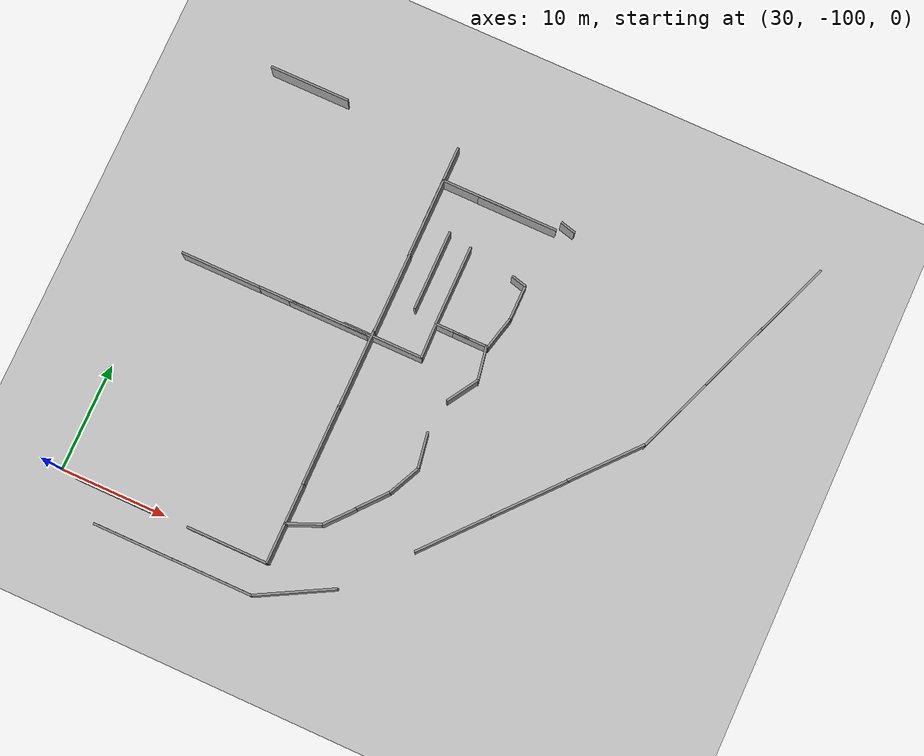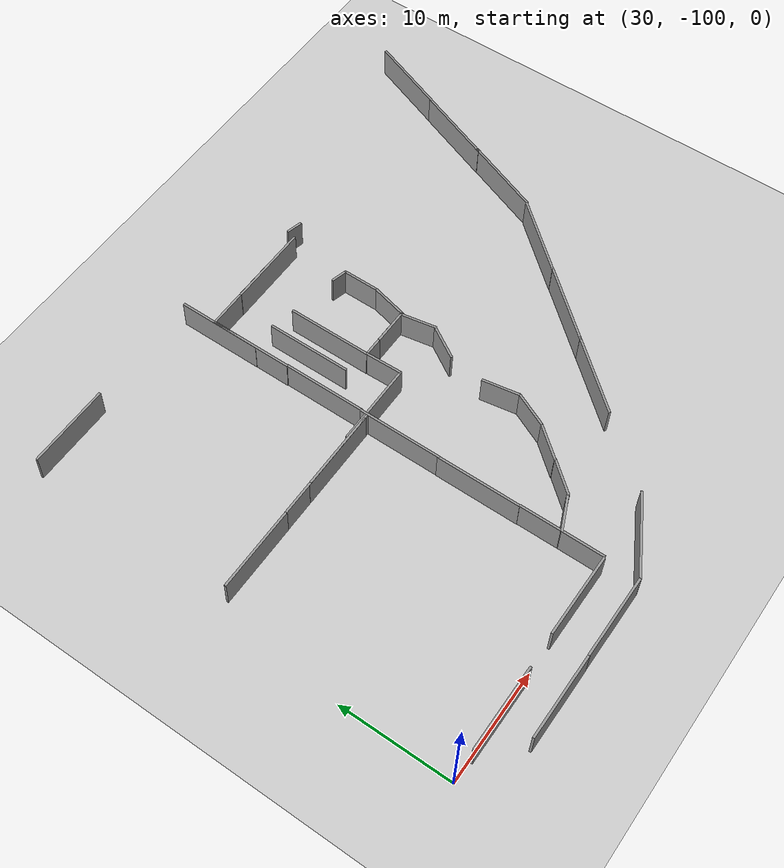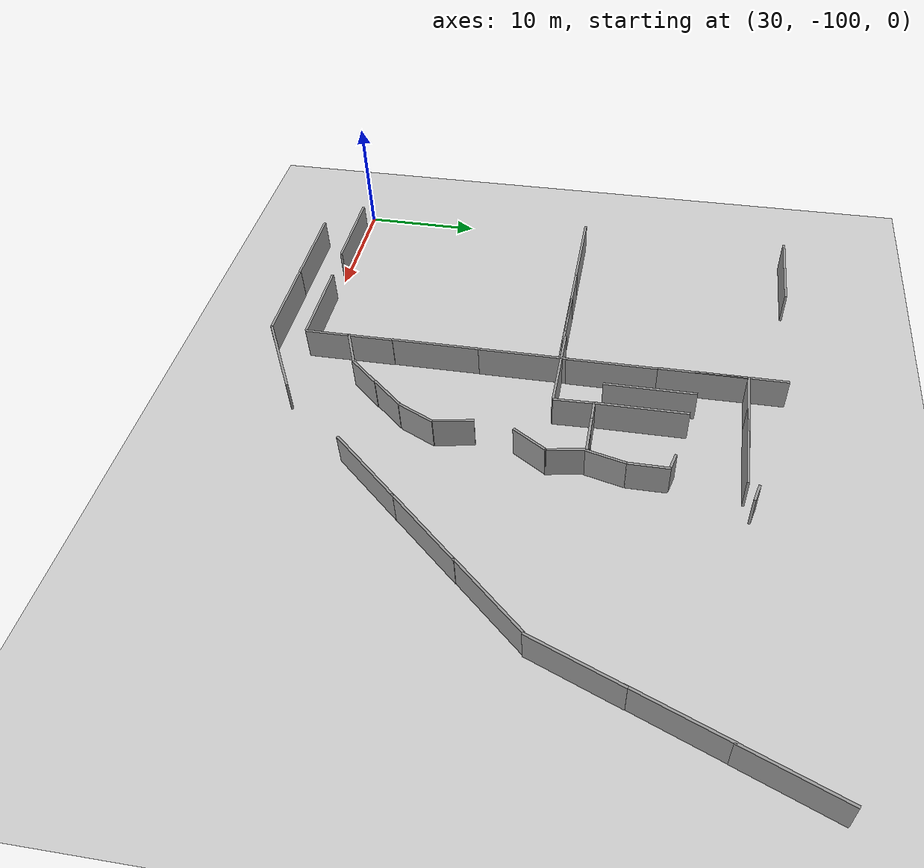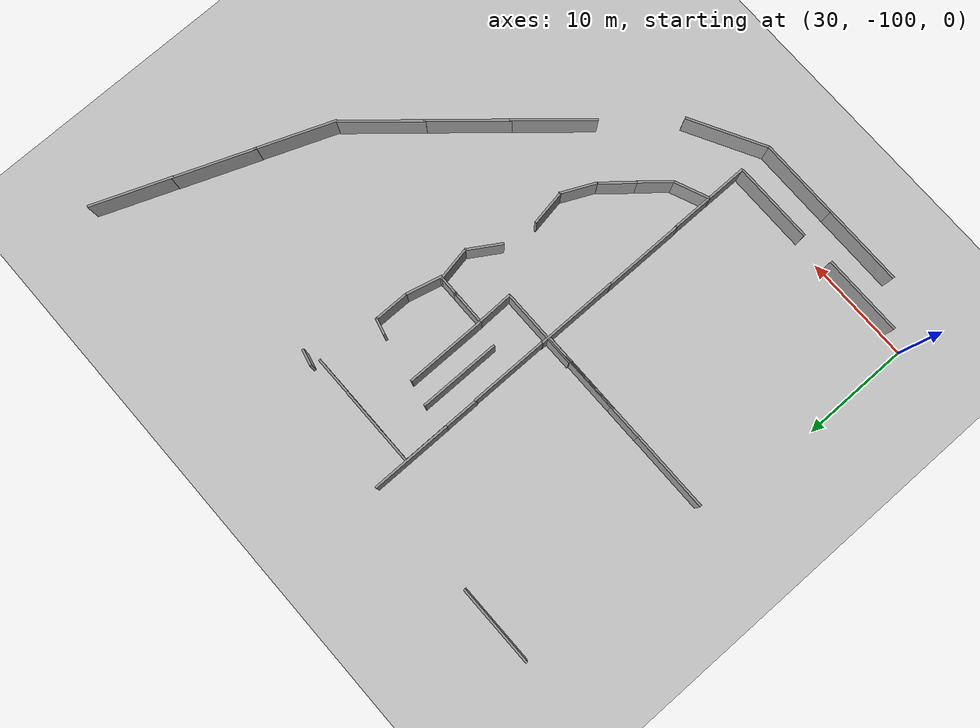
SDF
<sdf version="1.7">
 <world name="default">
  <model name="ground_plane">
   <static>1</static>
   <link name="link">
    <collision name="collision">
     <geometry><plane><normal>0 0 1</normal><size>100 100</size></plane></geometry>
     <surface>
      <contact><collide_bitmask>65535</collide_bitmask></contact>
      <friction><ode><mu>100</mu><mu2>50</mu2></ode></friction>
     </surface>
    </collision>
    <visual name="visual">
     <cast_shadows>0</cast_shadows>
     <geometry><plane><normal>0 0 1</normal><size>100 100</size></plane></geometry>
     <material>
      <script><uri>file://media/materials/scripts/gazebo.material</uri><name>Gazebo/Grey</name></script>
     </material>
    </visual>
   </link>
  </model>
  <model name="grey_wall_1_clone_clone_1_clone_clone_0_clone_clone_1">
   <static>1</static>
   <link name="link">
    <pose>0 0 1.4 0 -0 0</pose>
    <collision name="collision"><geometry><box><size>7.5 0.2 2.8</size></box></geometry></collision>
    <visual name="visual">
     <cast_shadows>0</cast_shadows>
     <geometry><box><size>7.5 0.2 2.8</size></box></geometry>
     <material>
      <script>
       <uri>model://grey_wall/materials/scripts</uri>
       <uri>model://grey_wall/materials/textures</uri>
       <name>vrc/grey_wall</name>
      </script>
     </material>
    </visual>
   </link>
   <pose>35.5148 -78.5396 0 0 -0 0</pose>
  </model>
  <model name="grey_wall_1_clone_clone_1_clone_clone_0_clone_clone_2">
   <static>1</static>
   <link name="link">
    <pose>0 0 1.4 0 -0 0</pose>
    <collision name="collision"><geometry><box><size>7.5 0.2 2.8</size></box></geometry></collision>
    <visual name="visual">
     <cast_shadows>0</cast_shadows>
     <geometry><box><size>7.5 0.2 2.8</size></box></geometry>
     <material>
      <script>
       <uri>model://grey_wall/materials/scripts</uri>
       <uri>model://grey_wall/materials/textures</uri>
       <name>vrc/grey_wall</name>
      </script>
     </material>
    </visual>
   </link>
   <pose>42.9136 -78.5242 0 0 -0 0</pose>
  </model>
  <model name="grey_wall_1_clone_clone_1_clone_clone_0_clone_clone_3">
   <static>1</static>
   <link name="link">
    <pose>0 0 1.4 0 -0 0</pose>
    <collision name="collision"><geometry><box><size>7.5 0.2 2.8</size></box></geometry></collision>
    <visual name="visual">
     <cast_shadows>0</cast_shadows>
     <geometry><box><size>7.5 0.2 2.8</size></box></geometry>
     <material>
      <script>
       <uri>model://grey_wall/materials/scripts</uri>
       <uri>model://grey_wall/materials/textures</uri>
       <name>vrc/grey_wall</name>
      </script>
     </material>
    </visual>
   </link>
   <pose>45.8586 -78.5297 0 0 -0 0</pose>
  </model>
  <model name="grey_wall_1_clone_clone_1_clone_clone_0_clone_clone_clone_1">
   <static>1</static>
   <link name="link">
    <pose>0 0 1.4 0 -0 0</pose>
    <collision name="collision"><geometry><box><size>7.5 0.2 2.8</size></box></geometry></collision>
    <visual name="visual">
     <cast_shadows>0</cast_shadows>
     <geometry><box><size>7.5 0.2 2.8</size></box></geometry>
     <material>
      <script>
       <uri>model://grey_wall/materials/scripts</uri>
       <uri>model://grey_wall/materials/textures</uri>
       <name>vrc/grey_wall</name>
      </script>
     </material>
    </visual>
   </link>
   <pose>35.6685 -100.202 0 0 -0 0</pose>
  </model>
  <model name="grey_wall_1_clone_clone_1_clone_clone_0_clone_clone_clone_2">
   <static>1</static>
   <link name="link">
    <pose>0 0 1.4 0 -0 0</pose>
    <collision name="collision"><geometry><box><size>7.5 0.2 2.8</size></box></geometry></collision>
    <visual name="visual">
     <cast_shadows>0</cast_shadows>
     <geometry><box><size>7.5 0.2 2.8</size></box></geometry>
     <material>
      <script>
       <uri>model://grey_wall/materials/scripts</uri>
       <uri>model://grey_wall/materials/textures</uri>
       <name>vrc/grey_wall</name>
      </script>
     </material>
    </visual>
   </link>
   <pose>46.1969 -100.082 0 0 -0 0</pose>
  </model>
  <model name="grey_wall_0_clone_0_clone_clone_clone_0_clone_clone_0_clone">
   <static>1</static>
   <link name="link">
    <pose>0 0 1.4 0 -0 0</pose>
    <collision name="collision"><geometry><box><size>7.5 0.2 2.8</size></box></geometry></collision>
    <visual name="visual">
     <cast_shadows>0</cast_shadows>
     <geometry><box><size>7.5 0.2 2.8</size></box></geometry>
     <material>
      <script>
       <uri>model://grey_wall/materials/scripts</uri>
       <uri>model://grey_wall/materials/textures</uri>
       <name>vrc/grey_wall</name>
      </script>
     </material>
    </visual>
   </link>
   <pose>50.0048 -96.3558 0 0 -0 1.5708</pose>
  </model>
  <model name="grey_wall_0_clone_0_clone_clone_clone_0_clone_clone_0_clone_0">
   <static>1</static>
   <link name="link">
    <pose>0 0 1.4 0 -0 0</pose>
    <collision name="collision"><geometry><box><size>7.5 0.2 2.8</size></box></geometry></collision>
    <visual name="visual">
     <cast_shadows>0</cast_shadows>
     <geometry><box><size>7.5 0.2 2.8</size></box></geometry>
     <material>
      <script>
       <uri>model://grey_wall/materials/scripts</uri>
       <uri>model://grey_wall/materials/textures</uri>
       <name>vrc/grey_wall</name>
      </script>
     </material>
    </visual>
   </link>
   <pose>49.9695 -88.9142 0 0 -0 1.5708</pose>
  </model>
  <model name="grey_wall_0_clone_0_clone_clone_clone_0_clone_clone_0_clone_1">
   <static>1</static>
   <link name="link">
    <pose>0 0 1.4 0 -0 0</pose>
    <collision name="collision"><geometry><box><size>7.5 0.2 2.8</size></box></geometry></collision>
    <visual name="visual">
     <cast_shadows>0</cast_shadows>
     <geometry><box><size>7.5 0.2 2.8</size></box></geometry>
     <material>
      <script>
       <uri>model://grey_wall/materials/scripts</uri>
       <uri>model://grey_wall/materials/textures</uri>
       <name>vrc/grey_wall</name>
      </script>
     </material>
    </visual>
   </link>
   <pose>49.993 -81.5608 0 0 -0 1.5708</pose>
  </model>
  <model name="grey_wall_0_clone_0_clone_clone_clone_0_clone_clone_0_clone_2">
   <static>1</static>
   <link name="link">
    <pose>0 0 1.4 0 -0 0</pose>
    <collision name="collision"><geometry><box><size>7.5 0.2 2.8</size></box></geometry></collision>
    <visual name="visual">
     <cast_shadows>0</cast_shadows>
     <geometry><box><size>7.5 0.2 2.8</size></box></geometry>
     <material>
      <script>
       <uri>model://grey_wall/materials/scripts</uri>
       <uri>model://grey_wall/materials/textures</uri>
       <name>vrc/grey_wall</name>
      </script>
     </material>
    </visual>
   </link>
   <pose>50.0365 -74.2557 0 0 -0 1.5708</pose>
  </model>
  <model name="grey_wall_0_clone_0_clone_clone_clone_0_clone_clone_0_clone_3">
   <static>1</static>
   <link name="link">
    <pose>0 0 1.4 0 -0 0</pose>
    <collision name="collision"><geometry><box><size>7.5 0.2 2.8</size></box></geometry></collision>
    <visual name="visual">
     <cast_shadows>0</cast_shadows>
     <geometry><box><size>7.5 0.2 2.8</size></box></geometry>
     <material>
      <script>
       <uri>model://grey_wall/materials/scripts</uri>
       <uri>model://grey_wall/materials/textures</uri>
       <name>vrc/grey_wall</name>
      </script>
     </material>
    </visual>
   </link>
   <pose>49.9876 -66.8962 0 0 -0 1.5708</pose>
  </model>
  <model name="grey_wall_0_clone_0_clone_clone_clone_0_clone_clone_0_clone_4">
   <static>1</static>
   <link name="link">
    <pose>0 0 1.4 0 -0 0</pose>
    <collision name="collision"><geometry><box><size>7.5 0.2 2.8</size></box></geometry></collision>
    <visual name="visual">
     <cast_shadows>0</cast_shadows>
     <geometry><box><size>7.5 0.2 2.8</size></box></geometry>
     <material>
      <script>
       <uri>model://grey_wall/materials/scripts</uri>
       <uri>model://grey_wall/materials/textures</uri>
       <name>vrc/grey_wall</name>
      </script>
     </material>
    </visual>
   </link>
   <pose>49.9704 -63.7191 0 0 -0 1.5708</pose>
  </model>
  <model name="grey_wall_1_clone_clone_1_clone_clone_0_clone_clone_5">
   <static>1</static>
   <link name="link">
    <pose>0 0 1.4 0 -0 0</pose>
    <collision name="collision"><geometry><box><size>7.5 0.2 2.8</size></box></geometry></collision>
    <visual name="visual">
     <cast_shadows>0</cast_shadows>
     <geometry><box><size>7.5 0.2 2.8</size></box></geometry>
     <material>
      <script>
       <uri>model://grey_wall/materials/scripts</uri>
       <uri>model://grey_wall/materials/textures</uri>
       <name>vrc/grey_wall</name>
      </script>
     </material>
    </visual>
   </link>
   <pose>35.5341 -60.0532 0 0 -0 0</pose>
  </model>
  <model name="grey_wall_1_clone_clone_1_clone_clone_0_clone_clone_clone_0_clone_2">
   <static>1</static>
   <link name="link">
    <pose>0 0 1.4 0 -0 0</pose>
    <collision name="collision"><geometry><box><size>7.5 0.2 2.8</size></box></geometry></collision>
    <visual name="visual">
     <cast_shadows>0</cast_shadows>
     <geometry><box><size>7.5 0.2 2.8</size></box></geometry>
     <material>
      <script>
       <uri>model://grey_wall/materials/scripts</uri>
       <uri>model://grey_wall/materials/textures</uri>
       <name>vrc/grey_wall</name>
      </script>
     </material>
    </visual>
   </link>
   <pose>38.7676 -103.126 0 0 -0 0</pose>
  </model>
  <model name="grey_wall_1_clone_clone_1_clone_clone_0_clone_clone_clone_0_clone_3">
   <static>1</static>
   <link name="link">
    <pose>0 0 1.4 0 -0 0</pose>
    <collision name="collision"><geometry><box><size>7.5 0.2 2.8</size></box></geometry></collision>
    <visual name="visual">
     <cast_shadows>0</cast_shadows>
     <geometry><box><size>7.5 0.2 2.8</size></box></geometry>
     <material>
      <script>
       <uri>model://grey_wall/materials/scripts</uri>
       <uri>model://grey_wall/materials/textures</uri>
       <name>vrc/grey_wall</name>
      </script>
     </material>
    </visual>
   </link>
   <pose>46.2305 -103.115 0 0 -0 0</pose>
  </model>
  <model name="grey_wall_1_clone_clone_1_clone_clone_0_clone_clone_3_clone">
   <static>1</static>
   <link name="link">
    <pose>0 0 1.4 0 -0 0</pose>
    <collision name="collision"><geometry><box><size>7.5 0.2 2.8</size></box></geometry></collision>
    <visual name="visual">
     <cast_shadows>0</cast_shadows>
     <geometry><box><size>7.5 0.2 2.8</size></box></geometry>
     <material>
      <script>
       <uri>model://grey_wall/materials/scripts</uri>
       <uri>model://grey_wall/materials/textures</uri>
       <name>vrc/grey_wall</name>
      </script>
     </material>
    </visual>
   </link>
   <pose>46.1597 -78.522 0 0 -0 0</pose>
  </model>
  <model name="half_grey_wall_clone_clone_0_clone_clone_clone_clone_0_clone_1_clone_0">
   <link name="link">
    <pose>0 0 1.4 0 -0 0</pose>
    <inertial>
     <mass>1</mass>
     <inertia><ixx>1</ixx><ixy>0</ixy><ixz>0</ixz><iyy>1</iyy><iyz>0</iyz><izz>1</izz></inertia>
    </inertial>
    <visual name="visual">
     <cast_shadows>0</cast_shadows>
     <geometry><box><size>3.3 0.2 2.8</size></box></geometry>
     <material>
      <script>
       <uri>model://grey_wall/materials/scripts</uri>
       <uri>model://grey_wall/materials/textures</uri>
       <name>vrc/grey_wall</name>
      </script>
      <shader type="pixel"><normal_map>__default__</normal_map></shader>
      <ambient>1 1 1 1</ambient>
      <diffuse>1 1 1 1</diffuse>
      <specular>0 0 0 1</specular>
      <emissive>0 0 0 1</emissive>
     </material>
    </visual>
    <collision name="collision">
     <geometry><box><size>3.3 0.2 2.8</size></box></geometry>
     <surface>
      <friction>
       <ode><mu>1</mu><mu2>1</mu2><fdir1>0 0 0</fdir1><slip1>0</slip1><slip2>0</slip2></ode>
       <torsional>
        <coefficient>1</coefficient>
        <patch_radius>0</patch_radius>
        <surface_radius>0</surface_radius>
        <use_patch_radius>1</use_patch_radius>
        <ode><slip>0</slip></ode>
       </torsional>
      </friction>
      <bounce><restitution_coefficient>0</restitution_coefficient><threshold>1e+06</threshold></bounce>
      <contact>
       <collide_without_contact>0</collide_without_contact>
       <collide_without_contact_bitmask>1</collide_without_contact_bitmask>
       <collide_bitmask>1</collide_bitmask>
       <ode>
        <soft_cfm>0</soft_cfm>
        <soft_erp>0.2</soft_erp>
        <kp>1e+13</kp>
        <kd>1</kd>
        <max_vel>0.01</max_vel>
        <min_depth>0</min_depth>
       </ode>
       <bullet>
        <split_impulse>1</split_impulse>
        <split_impulse_penetration_threshold>-0.01</split_impulse_penetration_threshold>
        <soft_cfm>0</soft_cfm>
        <soft_erp>0.2</soft_erp>
        <kp>1e+13</kp>
        <kd>1</kd>
       </bullet>
      </contact>
     </surface>
    </collision>
   </link>
   <static>1</static>
   <pose>51.4428 -95.7398 0 0 0 -2.74169</pose>
  </model>
  <model name="half_grey_wall_clone_clone_0_clone_clone_clone_clone_0_clone_1_clone_1">
   <link name="link">
    <pose>0 0 1.4 0 -0 0</pose>
    <inertial>
     <mass>1</mass>
     <inertia><ixx>1</ixx><ixy>0</ixy><ixz>0</ixz><iyy>1</iyy><iyz>0</iyz><izz>1</izz></inertia>
    </inertial>
    <visual name="visual">
     <cast_shadows>0</cast_shadows>
     <geometry><box><size>3.3 0.2 2.8</size></box></geometry>
     <material>
      <script>
       <uri>model://grey_wall/materials/scripts</uri>
       <uri>model://grey_wall/materials/textures</uri>
       <name>vrc/grey_wall</name>
      </script>
      <shader type="pixel"><normal_map>__default__</normal_map></shader>
      <ambient>1 1 1 1</ambient>
      <diffuse>1 1 1 1</diffuse>
      <specular>0 0 0 1</specular>
      <emissive>0 0 0 1</emissive>
     </material>
    </visual>
    <collision name="collision">
     <geometry><box><size>3.3 0.2 2.8</size></box></geometry>
     <surface>
      <friction>
       <ode><mu>1</mu><mu2>1</mu2><fdir1>0 0 0</fdir1><slip1>0</slip1><slip2>0</slip2></ode>
       <torsional>
        <coefficient>1</coefficient>
        <patch_radius>0</patch_radius>
        <surface_radius>0</surface_radius>
        <use_patch_radius>1</use_patch_radius>
        <ode><slip>0</slip></ode>
       </torsional>
      </friction>
      <bounce><restitution_coefficient>0</restitution_coefficient><threshold>1e+06</threshold></bounce>
      <contact>
       <collide_without_contact>0</collide_without_contact>
       <collide_without_contact_bitmask>1</collide_without_contact_bitmask>
       <collide_bitmask>1</collide_bitmask>
       <ode>
        <soft_cfm>0</soft_cfm>
        <soft_erp>0.2</soft_erp>
        <kp>1e+13</kp>
        <kd>1</kd>
        <max_vel>0.01</max_vel>
        <min_depth>0</min_depth>
       </ode>
       <bullet>
        <split_impulse>1</split_impulse>
        <split_impulse_penetration_threshold>-0.01</split_impulse_penetration_threshold>
        <soft_cfm>0</soft_cfm>
        <soft_erp>0.2</soft_erp>
        <kp>1e+13</kp>
        <kd>1</kd>
       </bullet>
      </contact>
     </surface>
    </collision>
   </link>
   <static>1</static>
   <pose>53.9819 -93.9284 -0 0 0 -2.2781</pose>
  </model>
  <model name="grey_wall_1_clone_clone_1_clone_clone_0_clone_clone_3_clone_0">
   <static>1</static>
   <link name="link">
    <pose>0 0 1.4 0 -0 0</pose>
    <collision name="collision"><geometry><box><size>7.5 0.2 2.8</size></box></geometry></collision>
    <visual name="visual">
     <cast_shadows>0</cast_shadows>
     <geometry><box><size>7.5 0.2 2.8</size></box></geometry>
     <material>
      <script>
       <uri>model://grey_wall/materials/scripts</uri>
       <uri>model://grey_wall/materials/textures</uri>
       <name>vrc/grey_wall</name>
      </script>
     </material>
    </visual>
   </link>
   <pose>51.0695 -78.3972 0 0 -0 0</pose>
  </model>
  <model name="half_grey_wall_clone_clone_0_clone_clone_clone_clone_0_clone_0_clone_clone_1_clone_clone_clone_0_clone_0">
   <link name="link">
    <pose>0 0 1.4 0 -0 0</pose>
    <inertial>
     <mass>1</mass>
     <inertia><ixx>1</ixx><ixy>0</ixy><ixz>0</ixz><iyy>1</iyy><iyz>0</iyz><izz>1</izz></inertia>
    </inertial>
    <visual name="visual">
     <cast_shadows>0</cast_shadows>
     <geometry><box><size>3.3 0.2 2.8</size></box></geometry>
     <material>
      <script>
       <uri>model://grey_wall/materials/scripts</uri>
       <uri>model://grey_wall/materials/textures</uri>
       <name>vrc/grey_wall</name>
      </script>
      <shader type="pixel"><normal_map>__default__</normal_map></shader>
      <ambient>1 1 1 1</ambient>
      <diffuse>1 1 1 1</diffuse>
      <specular>0 0 0 1</specular>
      <emissive>0 0 0 1</emissive>
     </material>
    </visual>
    <collision name="collision">
     <geometry><box><size>3.3 0.2 2.8</size></box></geometry>
     <surface>
      <friction>
       <ode><mu>1</mu><mu2>1</mu2><fdir1>0 0 0</fdir1><slip1>0</slip1><slip2>0</slip2></ode>
       <torsional>
        <coefficient>1</coefficient>
        <patch_radius>0</patch_radius>
        <surface_radius>0</surface_radius>
        <use_patch_radius>1</use_patch_radius>
        <ode><slip>0</slip></ode>
       </torsional>
      </friction>
      <bounce><restitution_coefficient>0</restitution_coefficient><threshold>1e+06</threshold></bounce>
      <contact>
       <collide_without_contact>0</collide_without_contact>
       <collide_without_contact_bitmask>1</collide_without_contact_bitmask>
       <collide_bitmask>1</collide_bitmask>
       <ode>
        <soft_cfm>0</soft_cfm>
        <soft_erp>0.2</soft_erp>
        <kp>1e+13</kp>
        <kd>1</kd>
        <max_vel>0.01</max_vel>
        <min_depth>0</min_depth>
       </ode>
       <bullet>
        <split_impulse>1</split_impulse>
        <split_impulse_penetration_threshold>-0.01</split_impulse_penetration_threshold>
        <soft_cfm>0</soft_cfm>
        <soft_erp>0.2</soft_erp>
        <kp>1e+13</kp>
        <kd>1</kd>
       </bullet>
      </contact>
     </surface>
    </collision>
   </link>
   <static>1</static>
   <pose>54.7026 -76.784 -0 0 0 -1.5482</pose>
  </model>
  <model name="half_grey_wall_clone_clone_0_clone_clone_clone_clone_2_clone_clone_1_clone_clone_1">
   <link name="link">
    <pose>0 0 1.4 0 -0 0</pose>
    <inertial>
     <mass>1</mass>
     <inertia><ixx>1</ixx><ixy>0</ixy><ixz>0</ixz><iyy>1</iyy><iyz>0</iyz><izz>1</izz></inertia>
    </inertial>
    <visual name="visual">
     <cast_shadows>0</cast_shadows>
     <geometry><box><size>3.3 0.2 2.8</size></box></geometry>
     <material>
      <script>
       <uri>model://grey_wall/materials/scripts</uri>
       <uri>model://grey_wall/materials/textures</uri>
       <name>vrc/grey_wall</name>
      </script>
      <shader type="pixel"><normal_map>__default__</normal_map></shader>
      <ambient>1 1 1 1</ambient>
      <diffuse>1 1 1 1</diffuse>
      <specular>0 0 0 1</specular>
      <emissive>0 0 0 1</emissive>
     </material>
    </visual>
    <collision name="collision">
     <geometry><box><size>3.3 0.2 2.8</size></box></geometry>
     <surface>
      <friction>
       <ode><mu>1</mu><mu2>1</mu2><fdir1>0 0 0</fdir1><slip1>0</slip1><slip2>0</slip2></ode>
       <torsional>
        <coefficient>1</coefficient>
        <patch_radius>0</patch_radius>
        <surface_radius>0</surface_radius>
        <use_patch_radius>1</use_patch_radius>
        <ode><slip>0</slip></ode>
       </torsional>
      </friction>
      <bounce><restitution_coefficient>0</restitution_coefficient><threshold>1e+06</threshold></bounce>
      <contact>
       <collide_without_contact>0</collide_without_contact>
       <collide_without_contact_bitmask>1</collide_without_contact_bitmask>
       <collide_bitmask>1</collide_bitmask>
       <ode>
        <soft_cfm>0</soft_cfm>
        <soft_erp>0.2</soft_erp>
        <kp>1e+13</kp>
        <kd>1</kd>
        <max_vel>0.01</max_vel>
        <min_depth>0</min_depth>
       </ode>
       <bullet>
        <split_impulse>1</split_impulse>
        <split_impulse_penetration_threshold>-0.01</split_impulse_penetration_threshold>
        <soft_cfm>0</soft_cfm>
        <soft_erp>0.2</soft_erp>
        <kp>1e+13</kp>
        <kd>1</kd>
       </bullet>
      </contact>
     </surface>
    </collision>
   </link>
   <static>1</static>
   <pose>56.2341 -75.1641 0 0 -0 3.13943</pose>
  </model>
  <model name="half_grey_wall_clone_clone_0_clone_clone_clone_clone_0_clone_1_clone_1_clone">
   <link name="link">
    <pose>0 0 1.4 0 -0 0</pose>
    <inertial>
     <mass>1</mass>
     <inertia><ixx>1</ixx><ixy>0</ixy><ixz>0</ixz><iyy>1</iyy><iyz>0</iyz><izz>1</izz></inertia>
    </inertial>
    <visual name="visual">
     <cast_shadows>0</cast_shadows>
     <geometry><box><size>3.3 0.2 2.8</size></box></geometry>
     <material>
      <script>
       <uri>model://grey_wall/materials/scripts</uri>
       <uri>model://grey_wall/materials/textures</uri>
       <name>vrc/grey_wall</name>
      </script>
      <shader type="pixel"><normal_map>__default__</normal_map></shader>
      <ambient>1 1 1 1</ambient>
      <diffuse>1 1 1 1</diffuse>
      <specular>0 0 0 1</specular>
      <emissive>0 0 0 1</emissive>
     </material>
    </visual>
    <collision name="collision">
     <geometry><box><size>3.3 0.2 2.8</size></box></geometry>
     <surface>
      <friction>
       <ode><mu>1</mu><mu2>1</mu2><fdir1>0 0 0</fdir1><slip1>0</slip1><slip2>0</slip2></ode>
       <torsional>
        <coefficient>1</coefficient>
        <patch_radius>0</patch_radius>
        <surface_radius>0</surface_radius>
        <use_patch_radius>1</use_patch_radius>
        <ode><slip>0</slip></ode>
       </torsional>
      </friction>
      <bounce><restitution_coefficient>0</restitution_coefficient><threshold>1e+06</threshold></bounce>
      <contact>
       <collide_without_contact>0</collide_without_contact>
       <collide_without_contact_bitmask>1</collide_without_contact_bitmask>
       <collide_bitmask>1</collide_bitmask>
       <ode>
        <soft_cfm>0</soft_cfm>
        <soft_erp>0.2</soft_erp>
        <kp>1e+13</kp>
        <kd>1</kd>
        <max_vel>0.01</max_vel>
        <min_depth>0</min_depth>
       </ode>
       <bullet>
        <split_impulse>1</split_impulse>
        <split_impulse_penetration_threshold>-0.01</split_impulse_penetration_threshold>
        <soft_cfm>0</soft_cfm>
        <soft_erp>0.2</soft_erp>
        <kp>1e+13</kp>
        <kd>1</kd>
       </bullet>
      </contact>
     </surface>
    </collision>
   </link>
   <static>1</static>
   <pose>56.0141 -91.4835 0 0 0 -2.27394</pose>
  </model>
  <model name="half_grey_wall_clone_clone_0_clone_clone_clone_clone_0_clone_1_clone_1_clone_0">
   <link name="link">
    <pose>0 0 1.4 0 -0 0</pose>
    <inertial>
     <mass>1</mass>
     <inertia><ixx>1</ixx><ixy>0</ixy><ixz>0</ixz><iyy>1</iyy><iyz>0</iyz><izz>1</izz></inertia>
    </inertial>
    <visual name="visual">
     <cast_shadows>0</cast_shadows>
     <geometry><box><size>3.3 0.2 2.8</size></box></geometry>
     <material>
      <script>
       <uri>model://grey_wall/materials/scripts</uri>
       <uri>model://grey_wall/materials/textures</uri>
       <name>vrc/grey_wall</name>
      </script>
      <shader type="pixel"><normal_map>__default__</normal_map></shader>
      <ambient>1 1 1 1</ambient>
      <diffuse>1 1 1 1</diffuse>
      <specular>0 0 0 1</specular>
      <emissive>0 0 0 1</emissive>
     </material>
    </visual>
    <collision name="collision">
     <geometry><box><size>3.3 0.2 2.8</size></box></geometry>
     <surface>
      <friction>
       <ode><mu>1</mu><mu2>1</mu2><fdir1>0 0 0</fdir1><slip1>0</slip1><slip2>0</slip2></ode>
       <torsional>
        <coefficient>1</coefficient>
        <patch_radius>0</patch_radius>
        <surface_radius>0</surface_radius>
        <use_patch_radius>1</use_patch_radius>
        <ode><slip>0</slip></ode>
       </torsional>
      </friction>
      <bounce><restitution_coefficient>0</restitution_coefficient><threshold>1e+06</threshold></bounce>
      <contact>
       <collide_without_contact>0</collide_without_contact>
       <collide_without_contact_bitmask>1</collide_without_contact_bitmask>
       <collide_bitmask>1</collide_bitmask>
       <ode>
        <soft_cfm>0</soft_cfm>
        <soft_erp>0.2</soft_erp>
        <kp>1e+13</kp>
        <kd>1</kd>
        <max_vel>0.01</max_vel>
        <min_depth>0</min_depth>
       </ode>
       <bullet>
        <split_impulse>1</split_impulse>
        <split_impulse_penetration_threshold>-0.01</split_impulse_penetration_threshold>
        <soft_cfm>0</soft_cfm>
        <soft_erp>0.2</soft_erp>
        <kp>1e+13</kp>
        <kd>1</kd>
       </bullet>
      </contact>
     </surface>
    </collision>
   </link>
   <static>1</static>
   <pose>57.8183 -88.7144 0 0 0 -2.01124</pose>
  </model>
  <model name="half_grey_wall_clone_clone_0_clone_clone_clone_clone_0_clone_1_clone_1_clone_1">
   <link name="link">
    <pose>0 0 1.4 0 -0 0</pose>
    <inertial>
     <mass>1</mass>
     <inertia><ixx>1</ixx><ixy>0</ixy><ixz>0</ixz><iyy>1</iyy><iyz>0</iyz><izz>1</izz></inertia>
    </inertial>
    <visual name="visual">
     <cast_shadows>0</cast_shadows>
     <geometry><box><size>3.3 0.2 2.8</size></box></geometry>
     <material>
      <script>
       <uri>model://grey_wall/materials/scripts</uri>
       <uri>model://grey_wall/materials/textures</uri>
       <name>vrc/grey_wall</name>
      </script>
      <shader type="pixel"><normal_map>__default__</normal_map></shader>
      <ambient>1 1 1 1</ambient>
      <diffuse>1 1 1 1</diffuse>
      <specular>0 0 0 1</specular>
      <emissive>0 0 0 1</emissive>
     </material>
    </visual>
    <collision name="collision">
     <geometry><box><size>3.3 0.2 2.8</size></box></geometry>
     <surface>
      <friction>
       <ode><mu>1</mu><mu2>1</mu2><fdir1>0 0 0</fdir1><slip1>0</slip1><slip2>0</slip2></ode>
       <torsional>
        <coefficient>1</coefficient>
        <patch_radius>0</patch_radius>
        <surface_radius>0</surface_radius>
        <use_patch_radius>1</use_patch_radius>
        <ode><slip>0</slip></ode>
       </torsional>
      </friction>
      <bounce><restitution_coefficient>0</restitution_coefficient><threshold>1e+06</threshold></bounce>
      <contact>
       <collide_without_contact>0</collide_without_contact>
       <collide_without_contact_bitmask>1</collide_without_contact_bitmask>
       <collide_bitmask>1</collide_bitmask>
       <ode>
        <soft_cfm>0</soft_cfm>
        <soft_erp>0.2</soft_erp>
        <kp>1e+13</kp>
        <kd>1</kd>
        <max_vel>0.01</max_vel>
        <min_depth>0</min_depth>
       </ode>
       <bullet>
        <split_impulse>1</split_impulse>
        <split_impulse_penetration_threshold>-0.01</split_impulse_penetration_threshold>
        <soft_cfm>0</soft_cfm>
        <soft_erp>0.2</soft_erp>
        <kp>1e+13</kp>
        <kd>1</kd>
       </bullet>
      </contact>
     </surface>
    </collision>
   </link>
   <static>1</static>
   <pose>58.1997 -85.7051 0 0 0 -1.40502</pose>
  </model>
  <model name="half_grey_wall_clone_clone_0_clone_clone_clone_clone_2_clone_clone_1_clone_clone_1_clone">
   <link name="link">
    <pose>0 0 1.4 0 -0 0</pose>
    <inertial>
     <mass>1</mass>
     <inertia><ixx>1</ixx><ixy>0</ixy><ixz>0</ixz><iyy>1</iyy><iyz>0</iyz><izz>1</izz></inertia>
    </inertial>
    <visual name="visual">
     <cast_shadows>0</cast_shadows>
     <geometry><box><size>3.3 0.2 2.8</size></box></geometry>
     <material>
      <script>
       <uri>model://grey_wall/materials/scripts</uri>
       <uri>model://grey_wall/materials/textures</uri>
       <name>vrc/grey_wall</name>
      </script>
      <shader type="pixel"><normal_map>__default__</normal_map></shader>
      <ambient>1 1 1 1</ambient>
      <diffuse>1 1 1 1</diffuse>
      <specular>0 0 0 1</specular>
      <emissive>0 0 0 1</emissive>
     </material>
    </visual>
    <collision name="collision">
     <geometry><box><size>3.3 0.2 2.8</size></box></geometry>
     <surface>
      <friction>
       <ode><mu>1</mu><mu2>1</mu2><fdir1>0 0 0</fdir1><slip1>0</slip1><slip2>0</slip2></ode>
       <torsional>
        <coefficient>1</coefficient>
        <patch_radius>0</patch_radius>
        <surface_radius>0</surface_radius>
        <use_patch_radius>1</use_patch_radius>
        <ode><slip>0</slip></ode>
       </torsional>
      </friction>
      <bounce><restitution_coefficient>0</restitution_coefficient><threshold>1e+06</threshold></bounce>
      <contact>
       <collide_without_contact>0</collide_without_contact>
       <collide_without_contact_bitmask>1</collide_without_contact_bitmask>
       <collide_bitmask>1</collide_bitmask>
       <ode>
        <soft_cfm>0</soft_cfm>
        <soft_erp>0.2</soft_erp>
        <kp>1e+13</kp>
        <kd>1</kd>
        <max_vel>0.01</max_vel>
        <min_depth>0</min_depth>
       </ode>
       <bullet>
        <split_impulse>1</split_impulse>
        <split_impulse_penetration_threshold>-0.01</split_impulse_penetration_threshold>
        <soft_cfm>0</soft_cfm>
        <soft_erp>0.2</soft_erp>
        <kp>1e+13</kp>
        <kd>1</kd>
       </bullet>
      </contact>
     </surface>
    </collision>
   </link>
   <static>1</static>
   <pose>57.9955 -75.1779 0 0 -0 3.13943</pose>
  </model>
  <model name="grey_wall_0_clone_0_clone_clone_clone_0_clone_clone_0_clone_3_clone">
   <static>1</static>
   <link name="link">
    <pose>0 0 1.4 0 -0 0</pose>
    <collision name="collision"><geometry><box><size>7.5 0.2 2.8</size></box></geometry></collision>
    <visual name="visual">
     <cast_shadows>0</cast_shadows>
     <geometry><box><size>7.5 0.2 2.8</size></box></geometry>
     <material>
      <script>
       <uri>model://grey_wall/materials/scripts</uri>
       <uri>model://grey_wall/materials/textures</uri>
       <name>vrc/grey_wall</name>
      </script>
     </material>
    </visual>
   </link>
   <pose>54.647 -71.4376 0 0 -0 1.5708</pose>
  </model>
  <model name="grey_wall_0_clone_0_clone_clone_clone_0_clone_clone_0_clone_3_clone_0">
   <static>1</static>
   <link name="link">
    <pose>0 0 1.4 0 -0 0</pose>
    <collision name="collision"><geometry><box><size>7.5 0.2 2.8</size></box></geometry></collision>
    <visual name="visual">
     <cast_shadows>0</cast_shadows>
     <geometry><box><size>7.5 0.2 2.8</size></box></geometry>
     <material>
      <script>
       <uri>model://grey_wall/materials/scripts</uri>
       <uri>model://grey_wall/materials/textures</uri>
       <name>vrc/grey_wall</name>
      </script>
     </material>
    </visual>
   </link>
   <pose>52.4188 -70.9466 0 0 -0 1.5708</pose>
  </model>
  <model name="grey_wall_1_clone_clone_1_clone_clone_0_clone_clone_6_clone">
   <static>1</static>
   <link name="link">
    <pose>0 0 1.4 0 -0 0</pose>
    <collision name="collision"><geometry><box><size>7.5 0.2 2.8</size></box></geometry></collision>
    <visual name="visual">
     <cast_shadows>0</cast_shadows>
     <geometry><box><size>7.5 0.2 2.8</size></box></geometry>
     <material>
      <script>
       <uri>model://grey_wall/materials/scripts</uri>
       <uri>model://grey_wall/materials/textures</uri>
       <name>vrc/grey_wall</name>
      </script>
     </material>
    </visual>
   </link>
   <pose>53.6768 -63.2029 0 0 -0 0</pose>
  </model>
  <model name="grey_wall_1_clone_clone_1_clone_clone_0_clone_clone_6_clone_clone">
   <static>1</static>
   <link name="link">
    <pose>0 0 1.4 0 -0 0</pose>
    <collision name="collision"><geometry><box><size>7.5 0.2 2.8</size></box></geometry></collision>
    <visual name="visual">
     <cast_shadows>0</cast_shadows>
     <geometry><box><size>7.5 0.2 2.8</size></box></geometry>
     <material>
      <script>
       <uri>model://grey_wall/materials/scripts</uri>
       <uri>model://grey_wall/materials/textures</uri>
       <name>vrc/grey_wall</name>
      </script>
     </material>
    </visual>
   </link>
   <pose>57.1429 -63.2227 0 0 -0 0</pose>
  </model>
  <model name="grey_wall_1_clone_clone_1_clone_clone_0_clone_clone_clone_0_clone_4_clone_clone">
   <static>1</static>
   <link name="link">
    <pose>0 0 1.4 0 -0 0</pose>
    <collision name="collision"><geometry><box><size>7.5 0.2 2.8</size></box></geometry></collision>
    <visual name="visual">
     <cast_shadows>0</cast_shadows>
     <geometry><box><size>7.5 0.2 2.8</size></box></geometry>
     <material>
      <script>
       <uri>model://grey_wall/materials/scripts</uri>
       <uri>model://grey_wall/materials/textures</uri>
       <name>vrc/grey_wall</name>
      </script>
     </material>
    </visual>
   </link>
   <pose>63.5995 -91.142 0 0 -0 0.857452</pose>
  </model>
  <model name="grey_wall_1_clone_clone_1_clone_clone_0_clone_clone_clone_0_clone_4_clone_clone_0">
   <static>1</static>
   <link name="link">
    <pose>0 0 1.4 0 -0 0</pose>
    <collision name="collision"><geometry><box><size>7.5 0.2 2.8</size></box></geometry></collision>
    <visual name="visual">
     <cast_shadows>0</cast_shadows>
     <geometry><box><size>7.5 0.2 2.8</size></box></geometry>
     <material>
      <script>
       <uri>model://grey_wall/materials/scripts</uri>
       <uri>model://grey_wall/materials/textures</uri>
       <name>vrc/grey_wall</name>
      </script>
     </material>
    </visual>
   </link>
   <pose>68.3271 -85.6689 0 0 -0 0.857452</pose>
  </model>
  <model name="half_grey_wall_clone_clone_0_clone_clone_clone_clone_2_clone_clone_1_clone_clone_1_clone_clone_0_clone_clone_0">
   <link name="link">
    <pose>0 0 1.4 0 -0 0</pose>
    <inertial>
     <mass>1</mass>
     <inertia><ixx>1</ixx><ixy>0</ixy><ixz>0</ixz><iyy>1</iyy><iyz>0</iyz><izz>1</izz></inertia>
    </inertial>
    <visual name="visual">
     <cast_shadows>0</cast_shadows>
     <geometry><box><size>3.3 0.2 2.8</size></box></geometry>
     <material>
      <script>
       <uri>model://grey_wall/materials/scripts</uri>
       <uri>model://grey_wall/materials/textures</uri>
       <name>vrc/grey_wall</name>
      </script>
      <shader type="pixel"><normal_map>__default__</normal_map></shader>
      <ambient>1 1 1 1</ambient>
      <diffuse>1 1 1 1</diffuse>
      <specular>0 0 0 1</specular>
      <emissive>0 0 0 1</emissive>
     </material>
    </visual>
    <collision name="collision">
     <geometry><box><size>3.3 0.2 2.8</size></box></geometry>
     <surface>
      <friction>
       <ode><mu>1</mu><mu2>1</mu2><fdir1>0 0 0</fdir1><slip1>0</slip1><slip2>0</slip2></ode>
       <torsional>
        <coefficient>1</coefficient>
        <patch_radius>0</patch_radius>
        <surface_radius>0</surface_radius>
        <use_patch_radius>1</use_patch_radius>
        <ode><slip>0</slip></ode>
       </torsional>
      </friction>
      <bounce><restitution_coefficient>0</restitution_coefficient><threshold>1e+06</threshold></bounce>
      <contact>
       <collide_without_contact>0</collide_without_contact>
       <collide_without_contact_bitmask>1</collide_without_contact_bitmask>
       <collide_bitmask>1</collide_bitmask>
       <ode>
        <soft_cfm>0</soft_cfm>
        <soft_erp>0.2</soft_erp>
        <kp>1e+13</kp>
        <kd>1</kd>
        <max_vel>0.01</max_vel>
        <min_depth>0</min_depth>
       </ode>
       <bullet>
        <split_impulse>1</split_impulse>
        <split_impulse_penetration_threshold>-0.01</split_impulse_penetration_threshold>
        <soft_cfm>0</soft_cfm>
        <soft_erp>0.2</soft_erp>
        <kp>1e+13</kp>
        <kd>1</kd>
       </bullet>
      </contact>
     </surface>
    </collision>
   </link>
   <static>1</static>
   <pose>60.0023 -73.6645 0 0 0 -1.81435</pose>
  </model>
  <model name="half_grey_wall_clone_clone_0_clone_clone_clone_clone_2_clone_clone_1_clone_clone_1_clone_clone_0_clone_clone_1">
   <link name="link">
    <pose>0 0 1.4 0 -0 0</pose>
    <inertial>
     <mass>1</mass>
     <inertia><ixx>1</ixx><ixy>0</ixy><ixz>0</ixz><iyy>1</iyy><iyz>0</iyz><izz>1</izz></inertia>
    </inertial>
    <visual name="visual">
     <cast_shadows>0</cast_shadows>
     <geometry><box><size>3.3 0.2 2.8</size></box></geometry>
     <material>
      <script>
       <uri>model://grey_wall/materials/scripts</uri>
       <uri>model://grey_wall/materials/textures</uri>
       <name>vrc/grey_wall</name>
      </script>
      <shader type="pixel"><normal_map>__default__</normal_map></shader>
      <ambient>1 1 1 1</ambient>
      <diffuse>1 1 1 1</diffuse>
      <specular>0 0 0 1</specular>
      <emissive>0 0 0 1</emissive>
     </material>
    </visual>
    <collision name="collision">
     <geometry><box><size>3.3 0.2 2.8</size></box></geometry>
     <surface>
      <friction>
       <ode><mu>1</mu><mu2>1</mu2><fdir1>0 0 0</fdir1><slip1>0</slip1><slip2>0</slip2></ode>
       <torsional>
        <coefficient>1</coefficient>
        <patch_radius>0</patch_radius>
        <surface_radius>0</surface_radius>
        <use_patch_radius>1</use_patch_radius>
        <ode><slip>0</slip></ode>
       </torsional>
      </friction>
      <bounce><restitution_coefficient>0</restitution_coefficient><threshold>1e+06</threshold></bounce>
      <contact>
       <collide_without_contact>0</collide_without_contact>
       <collide_without_contact_bitmask>1</collide_without_contact_bitmask>
       <collide_bitmask>1</collide_bitmask>
       <ode>
        <soft_cfm>0</soft_cfm>
        <soft_erp>0.2</soft_erp>
        <kp>1e+13</kp>
        <kd>1</kd>
        <max_vel>0.01</max_vel>
        <min_depth>0</min_depth>
       </ode>
       <bullet>
        <split_impulse>1</split_impulse>
        <split_impulse_penetration_threshold>-0.01</split_impulse_penetration_threshold>
        <soft_cfm>0</soft_cfm>
        <soft_erp>0.2</soft_erp>
        <kp>1e+13</kp>
        <kd>1</kd>
       </bullet>
      </contact>
     </surface>
    </collision>
   </link>
   <static>1</static>
   <pose>60.3994 -70.4634 0 0 0 -1.57296</pose>
  </model>
  <model name="half_grey_wall_clone_clone_clone_0_clone_clone_0_clone_clone_0_clone_0_clone_9_clone_0_clone_clone_clone_0_clone_clone_0">
   <link name="link">
    <pose>0 0 1.4 0 -0 0</pose>
    <inertial>
     <mass>1</mass>
     <inertia><ixx>1</ixx><ixy>0</ixy><ixz>0</ixz><iyy>1</iyy><iyz>0</iyz><izz>1</izz></inertia>
    </inertial>
    <visual name="visual">
     <cast_shadows>0</cast_shadows>
     <geometry><box><size>1.5 0.2 2.8</size></box></geometry>
     <material>
      <script>
       <uri>model://grey_wall/materials/scripts</uri>
       <uri>model://grey_wall/materials/textures</uri>
       <name>vrc/grey_wall</name>
      </script>
      <shader type="pixel"><normal_map>__default__</normal_map></shader>
      <ambient>1 1 1 1</ambient>
      <diffuse>1 1 1 1</diffuse>
      <specular>0 0 0 1</specular>
      <emissive>0 0 0 1</emissive>
     </material>
    </visual>
    <collision name="collision">
     <geometry><box><size>1.5 0.2 2.8</size></box></geometry>
     <surface>
      <friction>
       <ode><mu>1</mu><mu2>1</mu2><fdir1>0 0 0</fdir1><slip1>0</slip1><slip2>0</slip2></ode>
       <torsional>
        <coefficient>1</coefficient>
        <patch_radius>0</patch_radius>
        <surface_radius>0</surface_radius>
        <use_patch_radius>1</use_patch_radius>
        <ode><slip>0</slip></ode>
       </torsional>
      </friction>
      <bounce><restitution_coefficient>0</restitution_coefficient><threshold>1e+06</threshold></bounce>
      <contact>
       <collide_without_contact>0</collide_without_contact>
       <collide_without_contact_bitmask>1</collide_without_contact_bitmask>
       <collide_bitmask>1</collide_bitmask>
       <ode>
        <soft_cfm>0</soft_cfm>
        <soft_erp>0.2</soft_erp>
        <kp>1e+13</kp>
        <kd>1</kd>
        <max_vel>0.01</max_vel>
        <min_depth>0</min_depth>
       </ode>
       <bullet>
        <split_impulse>1</split_impulse>
        <split_impulse_penetration_threshold>-0.01</split_impulse_penetration_threshold>
        <soft_cfm>0</soft_cfm>
        <soft_erp>0.2</soft_erp>
        <kp>1e+13</kp>
        <kd>1</kd>
       </bullet>
      </contact>
     </surface>
    </collision>
   </link>
   <static>1</static>
   <pose>61.7282 -62.569 0 0 -0 2.88811</pose>
  </model>
  <model name="half_grey_wall_clone_clone_0_clone_clone_clone_clone_2_clone_clone_1_clone_clone_1_clone_clone_0_clone_clone_1_clone">
   <link name="link">
    <pose>0 0 1.4 0 -0 0</pose>
    <inertial>
     <mass>1</mass>
     <inertia><ixx>1</ixx><ixy>0</ixy><ixz>0</ixz><iyy>1</iyy><iyz>0</iyz><izz>1</izz></inertia>
    </inertial>
    <visual name="visual">
     <cast_shadows>0</cast_shadows>
     <geometry><box><size>3.3 0.2 2.8</size></box></geometry>
     <material>
      <script>
       <uri>model://grey_wall/materials/scripts</uri>
       <uri>model://grey_wall/materials/textures</uri>
       <name>vrc/grey_wall</name>
      </script>
      <shader type="pixel"><normal_map>__default__</normal_map></shader>
      <ambient>1 1 1 1</ambient>
      <diffuse>1 1 1 1</diffuse>
      <specular>0 0 0 1</specular>
      <emissive>0 0 0 1</emissive>
     </material>
    </visual>
    <collision name="collision">
     <geometry><box><size>3.3 0.2 2.8</size></box></geometry>
     <surface>
      <friction>
       <ode><mu>1</mu><mu2>1</mu2><fdir1>0 0 0</fdir1><slip1>0</slip1><slip2>0</slip2></ode>
       <torsional>
        <coefficient>1</coefficient>
        <patch_radius>0</patch_radius>
        <surface_radius>0</surface_radius>
        <use_patch_radius>1</use_patch_radius>
        <ode><slip>0</slip></ode>
       </torsional>
      </friction>
      <bounce><restitution_coefficient>0</restitution_coefficient><threshold>1e+06</threshold></bounce>
      <contact>
       <collide_without_contact>0</collide_without_contact>
       <collide_without_contact_bitmask>1</collide_without_contact_bitmask>
       <collide_bitmask>1</collide_bitmask>
       <ode>
        <soft_cfm>0</soft_cfm>
        <soft_erp>0.2</soft_erp>
        <kp>1e+13</kp>
        <kd>1</kd>
        <max_vel>0.01</max_vel>
        <min_depth>0</min_depth>
       </ode>
       <bullet>
        <split_impulse>1</split_impulse>
        <split_impulse_penetration_threshold>-0.01</split_impulse_penetration_threshold>
        <soft_cfm>0</soft_cfm>
        <soft_erp>0.2</soft_erp>
        <kp>1e+13</kp>
        <kd>1</kd>
       </bullet>
      </contact>
     </surface>
    </collision>
   </link>
   <static>1</static>
   <pose>59.7629 -76.6757 0 0 0 -1.39184</pose>
  </model>
  <model name="half_grey_wall_clone_clone_0_clone_clone_clone_clone_2_clone_clone_1_clone_clone_1_clone_clone_0_clone_clone_clone">
   <link name="link">
    <pose>0 0 1.4 0 -0 0</pose>
    <inertial>
     <mass>1</mass>
     <inertia><ixx>1</ixx><ixy>0</ixy><ixz>0</ixz><iyy>1</iyy><iyz>0</iyz><izz>1</izz></inertia>
    </inertial>
    <visual name="visual">
     <cast_shadows>0</cast_shadows>
     <geometry><box><size>3.3 0.2 2.8</size></box></geometry>
     <material>
      <script>
       <uri>model://grey_wall/materials/scripts</uri>
       <uri>model://grey_wall/materials/textures</uri>
       <name>vrc/grey_wall</name>
      </script>
      <shader type="pixel"><normal_map>__default__</normal_map></shader>
      <ambient>1 1 1 1</ambient>
      <diffuse>1 1 1 1</diffuse>
      <specular>0 0 0 1</specular>
      <emissive>0 0 0 1</emissive>
     </material>
    </visual>
    <collision name="collision">
     <geometry><box><size>3.3 0.2 2.8</size></box></geometry>
     <surface>
      <friction>
       <ode><mu>1</mu><mu2>1</mu2><fdir1>0 0 0</fdir1><slip1>0</slip1><slip2>0</slip2></ode>
       <torsional>
        <coefficient>1</coefficient>
        <patch_radius>0</patch_radius>
        <surface_radius>0</surface_radius>
        <use_patch_radius>1</use_patch_radius>
        <ode><slip>0</slip></ode>
       </torsional>
      </friction>
      <bounce><restitution_coefficient>0</restitution_coefficient><threshold>1e+06</threshold></bounce>
      <contact>
       <collide_without_contact>0</collide_without_contact>
       <collide_without_contact_bitmask>1</collide_without_contact_bitmask>
       <collide_bitmask>1</collide_bitmask>
       <ode>
        <soft_cfm>0</soft_cfm>
        <soft_erp>0.2</soft_erp>
        <kp>1e+13</kp>
        <kd>1</kd>
        <max_vel>0.01</max_vel>
        <min_depth>0</min_depth>
       </ode>
       <bullet>
        <split_impulse>1</split_impulse>
        <split_impulse_penetration_threshold>-0.01</split_impulse_penetration_threshold>
        <soft_cfm>0</soft_cfm>
        <soft_erp>0.2</soft_erp>
        <kp>1e+13</kp>
        <kd>1</kd>
       </bullet>
      </contact>
     </surface>
    </collision>
   </link>
   <static>1</static>
   <pose>59.1905 -79.5337 0 0 0 -2.1276</pose>
  </model>
  <model name="half_grey_wall_clone_clone_clone_0_clone_clone_0_clone_clone_0_clone_0_clone_9_clone_0_clone_1">
   <link name="link">
    <pose>0 0 1.4 0 -0 0</pose>
    <inertial>
     <mass>1</mass>
     <inertia><ixx>1</ixx><ixy>0</ixy><ixz>0</ixz><iyy>1</iyy><iyz>0</iyz><izz>1</izz></inertia>
    </inertial>
    <visual name="visual">
     <cast_shadows>0</cast_shadows>
     <geometry><box><size>1.5 0.2 2.8</size></box></geometry>
     <material>
      <script>
       <uri>model://grey_wall/materials/scripts</uri>
       <uri>model://grey_wall/materials/textures</uri>
       <name>vrc/grey_wall</name>
      </script>
      <shader type="pixel"><normal_map>__default__</normal_map></shader>
      <ambient>1 1 1 1</ambient>
      <diffuse>1 1 1 1</diffuse>
      <specular>0 0 0 1</specular>
      <emissive>0 0 0 1</emissive>
     </material>
    </visual>
    <collision name="collision">
     <geometry><box><size>1.5 0.2 2.8</size></box></geometry>
     <surface>
      <friction>
       <ode><mu>1</mu><mu2>1</mu2><fdir1>0 0 0</fdir1><slip1>0</slip1><slip2>0</slip2></ode>
       <torsional>
        <coefficient>1</coefficient>
        <patch_radius>0</patch_radius>
        <surface_radius>0</surface_radius>
        <use_patch_radius>1</use_patch_radius>
        <ode><slip>0</slip></ode>
       </torsional>
      </friction>
      <bounce><restitution_coefficient>0</restitution_coefficient><threshold>1e+06</threshold></bounce>
      <contact>
       <collide_without_contact>0</collide_without_contact>
       <collide_without_contact_bitmask>1</collide_without_contact_bitmask>
       <collide_bitmask>1</collide_bitmask>
       <ode>
        <soft_cfm>0</soft_cfm>
        <soft_erp>0.2</soft_erp>
        <kp>1e+13</kp>
        <kd>1</kd>
        <max_vel>0.01</max_vel>
        <min_depth>0</min_depth>
       </ode>
       <bullet>
        <split_impulse>1</split_impulse>
        <split_impulse_penetration_threshold>-0.01</split_impulse_penetration_threshold>
        <soft_cfm>0</soft_cfm>
        <soft_erp>0.2</soft_erp>
        <kp>1e+13</kp>
        <kd>1</kd>
       </bullet>
      </contact>
     </surface>
    </collision>
   </link>
   <static>1</static>
   <pose>59.7346 -68.7243 0 0 -0 2.88811</pose>
  </model>
  <model name="grey_wall_1_clone_clone_1_clone_clone_0_clone_clone_clone_0_clone_4_clone_clone_0_clone">
   <static>1</static>
   <link name="link">
    <pose>0 0 1.4 0 -0 0</pose>
    <collision name="collision"><geometry><box><size>7.5 0.2 2.8</size></box></geometry></collision>
    <visual name="visual">
     <cast_shadows>0</cast_shadows>
     <geometry><box><size>7.5 0.2 2.8</size></box></geometry>
     <material>
      <script>
       <uri>model://grey_wall/materials/scripts</uri>
       <uri>model://grey_wall/materials/textures</uri>
       <name>vrc/grey_wall</name>
      </script>
     </material>
    </visual>
   </link>
   <pose>73.0752 -80.1493 0 0 -0 0.857452</pose>
  </model>
  <model name="grey_wall_1_clone_clone_1_clone_clone_0_clone_clone_clone_0_clone_4_clone_clone_0_clone_0_clone">
   <static>1</static>
   <link name="link">
    <pose>0 0 1.4 0 -0 0</pose>
    <collision name="collision"><geometry><box><size>7.5 0.2 2.8</size></box></geometry></collision>
    <visual name="visual">
     <cast_shadows>0</cast_shadows>
     <geometry><box><size>7.5 0.2 2.8</size></box></geometry>
     <material>
      <script>
       <uri>model://grey_wall/materials/scripts</uri>
       <uri>model://grey_wall/materials/textures</uri>
       <name>vrc/grey_wall</name>
      </script>
     </material>
    </visual>
   </link>
   <pose>76.9007 -73.9171 0 0 -0 1.20104</pose>
  </model>
  <model name="grey_wall_1_clone_clone_1_clone_clone_0_clone_clone_clone_0_clone_4_clone_clone_0_clone_0_clone_0">
   <static>1</static>
   <link name="link">
    <pose>0 0 1.4 0 -0 0</pose>
    <collision name="collision"><geometry><box><size>7.5 0.2 2.8</size></box></geometry></collision>
    <visual name="visual">
     <cast_shadows>0</cast_shadows>
     <geometry><box><size>7.5 0.2 2.8</size></box></geometry>
     <material>
      <script>
       <uri>model://grey_wall/materials/scripts</uri>
       <uri>model://grey_wall/materials/textures</uri>
       <name>vrc/grey_wall</name>
      </script>
     </material>
    </visual>
   </link>
   <pose>79.4557 -67.2664 0 0 -0 1.20104</pose>
  </model>
  <model name="grey_wall_1_clone_clone_1_clone_clone_0_clone_clone_clone_0_clone_4_clone_clone_0_clone_0_clone_1">
   <static>1</static>
   <link name="link">
    <pose>0 0 1.4 0 -0 0</pose>
    <collision name="collision"><geometry><box><size>7.5 0.2 2.8</size></box></geometry></collision>
    <visual name="visual">
     <cast_shadows>0</cast_shadows>
     <geometry><box><size>7.5 0.2 2.8</size></box></geometry>
     <material>
      <script>
       <uri>model://grey_wall/materials/scripts</uri>
       <uri>model://grey_wall/materials/textures</uri>
       <name>vrc/grey_wall</name>
      </script>
     </material>
    </visual>
   </link>
   <pose>82.1102 -60.4687 0 0 -0 1.20104</pose>
  </model>
  <model name="grey_wall_1_clone_clone_1_clone_clone_0_clone_clone_clone_0_clone_4_clone_clone_1">
   <static>1</static>
   <link name="link">
    <pose>0 0 1.4 0 -0 0</pose>
    <collision name="collision"><geometry><box><size>7.5 0.2 2.8</size></box></geometry></collision>
    <visual name="visual">
     <cast_shadows>0</cast_shadows>
     <geometry><box><size>7.5 0.2 2.8</size></box></geometry>
     <material>
      <script>
       <uri>model://grey_wall/materials/scripts</uri>
       <uri>model://grey_wall/materials/textures</uri>
       <name>vrc/grey_wall</name>
      </script>
     </material>
    </visual>
   </link>
   <pose>53.1688 -101.356 -0 0 -0 0.498614</pose>
  </model>
 </world>
</sdf>
